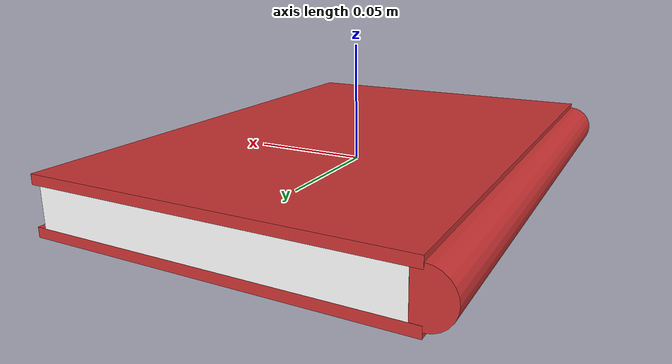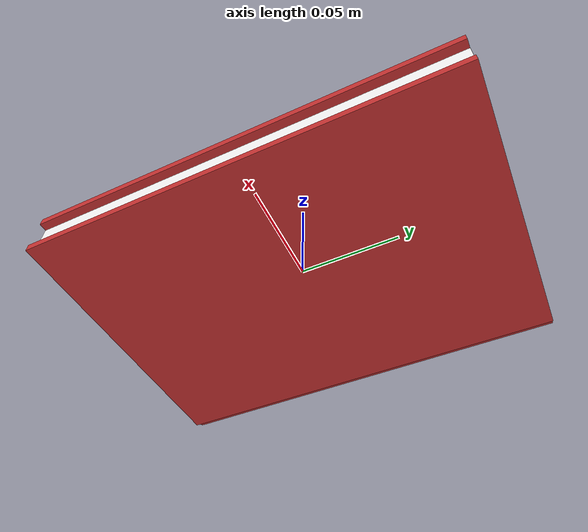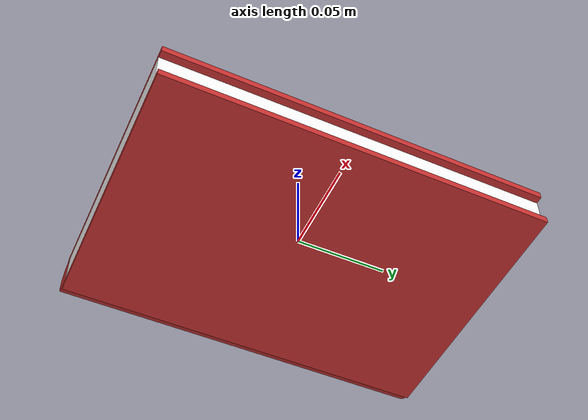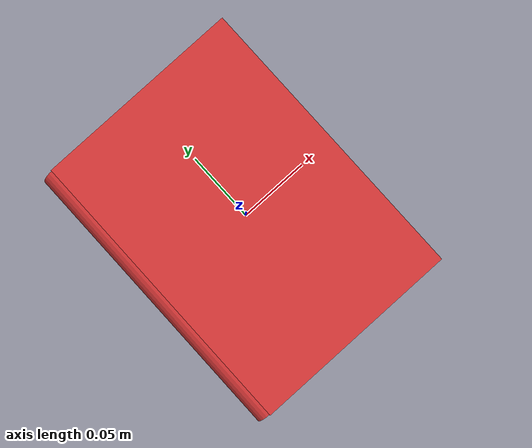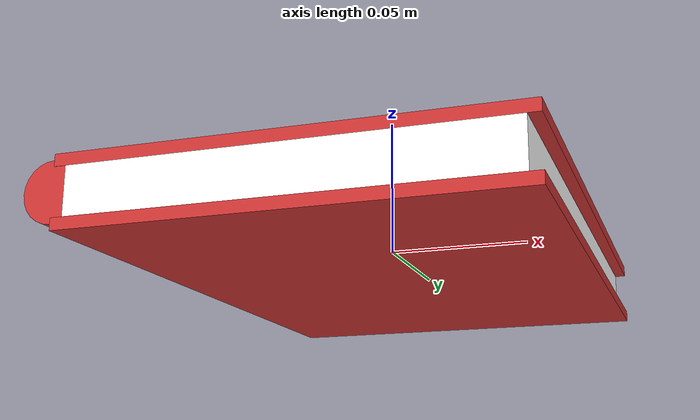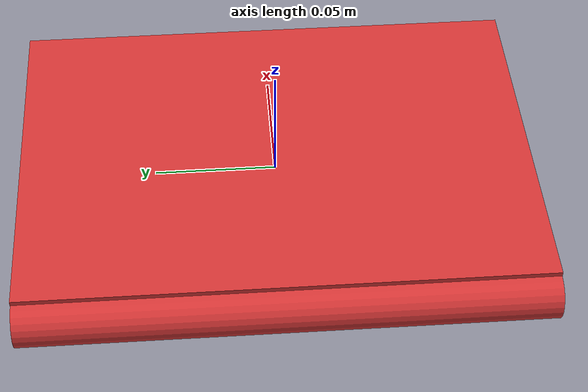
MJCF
<mujoco model="book">
    <!-- A5 size book -->
    <default>
        <joint type="hinge" pos="0 -0.2 0.007" axis="0 1 0" limited="true" damping="0.01"/>
        <geom contype="0" conaffinity="0" rgba="0.8 0.2 .2 1"/>
    </default>
    <worldbody>
        <body name="simple_book">
            <geom name="spine" type="cylinder" size="0.01" fromto="-0.074 -0.1049 0 -0.074 0.1049 0"/>
            <geom name="pages" type="box" size="0.07 0.105 0.008" rgba="1 1 1 1"/>
            <body name="front_cover">
                <geom name="front_cover" type="box" size="0.074 0.105 0.002" pos="0 0 0.01"/>
                <joint name="front_cover_joint" pos="-0.074 0 0" range="-150 0"/>
            </body>
            <body name="back_cover">
                <geom name="back_cover" type="box" size="0.074 0.105 0.002" pos="0 0 -0.01"/>
                <joint name="back_cover_joint" pos="-0.074 0 0" range="0 150"/>
            </body>
        </body>
    </worldbody>
</mujoco>
